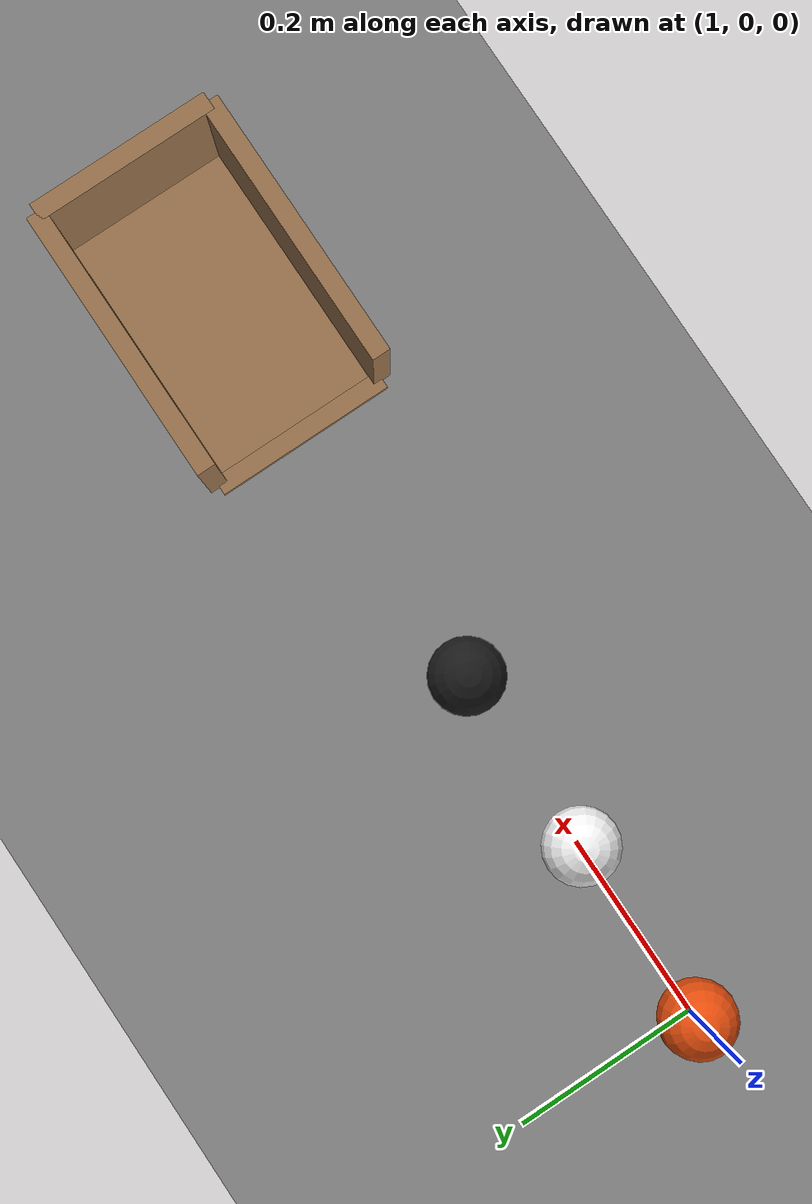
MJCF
<mujoco model="three_balls_into_a_cup">
  <compiler angle="radian"/>
  <option timestep="0.002"/>
  <worldbody>
    <geom name="floor" type="plane" size="6 6 0.1" friction="0.8 0.002 0.0005"/>
    <body name="ball1" pos="1 0 0.04">
      <freejoint/>
      <geom name="ball1" type="sphere" pos="0 0 0" size="0.04" mass="0.15" condim="6" friction="0.8 0.002 0.0005" solref="0.01 0.2" rgba="0.9 0.3 0.05 1"/>
    </body>
    <body name="ball2" pos="1.2 0 0.04">
      <freejoint/>
      <geom name="ball2" type="sphere" pos="0 0 0" size="0.04" mass="0.15" condim="6" friction="0.8 0.002 0.0005" solref="0.01 0.2" rgba="0.95 0.95 0.95 1"/>
    </body>
    <body name="ball3" pos="1.4 0 0.04">
      <freejoint/>
      <geom name="ball3" type="sphere" pos="0 0 0" size="0.04" mass="0.15" condim="6" friction="0.8 0.002 0.0005" solref="0.01 0.2" rgba="0.1 0.1 0.1 1"/>
    </body>
    <body name="cup">
      <geom name="cup_base" type="box" pos="1.85 0 0.0015" size="0.15 0.1 0.0015" friction="1 0.01 0.01" solref="0.01 1" rgba="0.6 0.45 0.3 1"/>
      <geom name="cup_near_wall" type="box" pos="1.7 0 0.003" size="0.01 0.1 0.003" friction="1 0.01 0.01" solref="0.01 1" rgba="0.6 0.45 0.3 1"/>
      <geom name="cup_far_wall" type="box" pos="2 0 0.05" size="0.01 0.1 0.05" friction="1 0.01 0.01" solref="0.01 1" rgba="0.6 0.45 0.3 1"/>
      <geom name="cup_left_wall" type="box" pos="1.85 0.1 0.05" size="0.15 0.01 0.05" friction="1 0.01 0.01" solref="0.01 1" rgba="0.6 0.45 0.3 1"/>
      <geom name="cup_right_wall" type="box" pos="1.85 -0.1 0.05" size="0.15 0.01 0.05" friction="1 0.01 0.01" solref="0.01 1" rgba="0.6 0.45 0.3 1"/>
    </body>
  </worldbody>
  <keyframe>
    <key name="start" qpos="1 0 0.04 1 0 0 0 1.2 0 0.04 1 0 0 0 1.4 0 0.04 1 0 0 0" qvel="3 0 0 0 75 0 0 0 0 0 0 0 0 0 0 0 0 0"/>
  </keyframe>
</mujoco>
